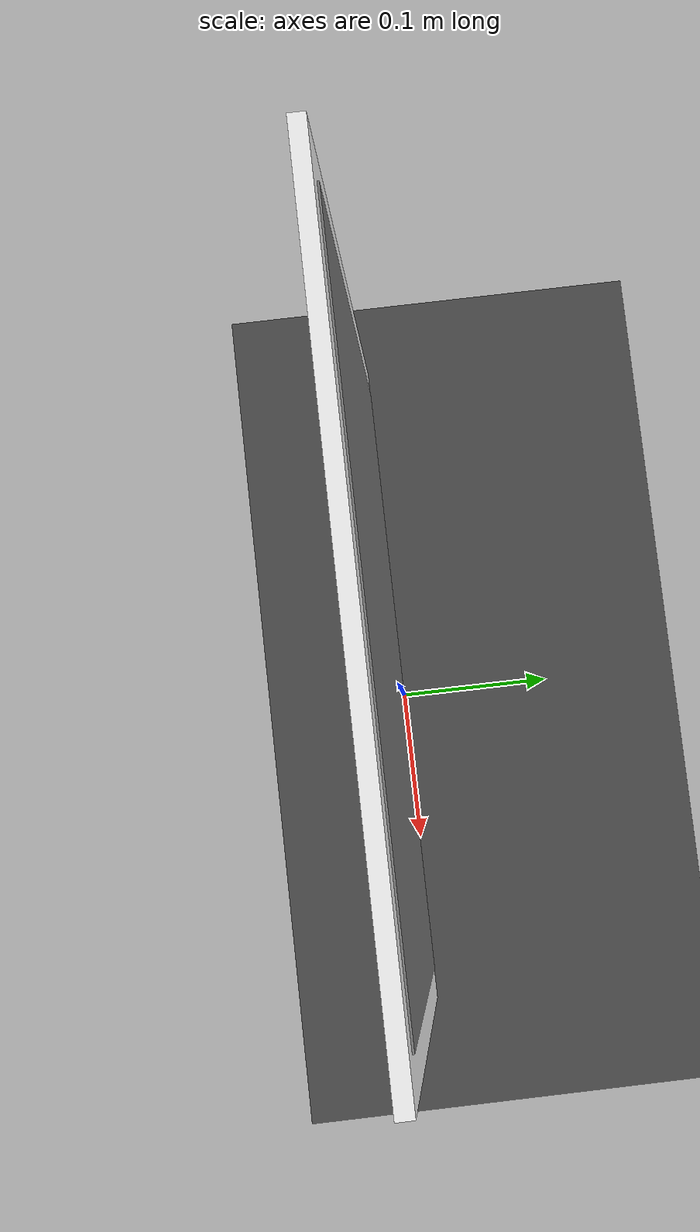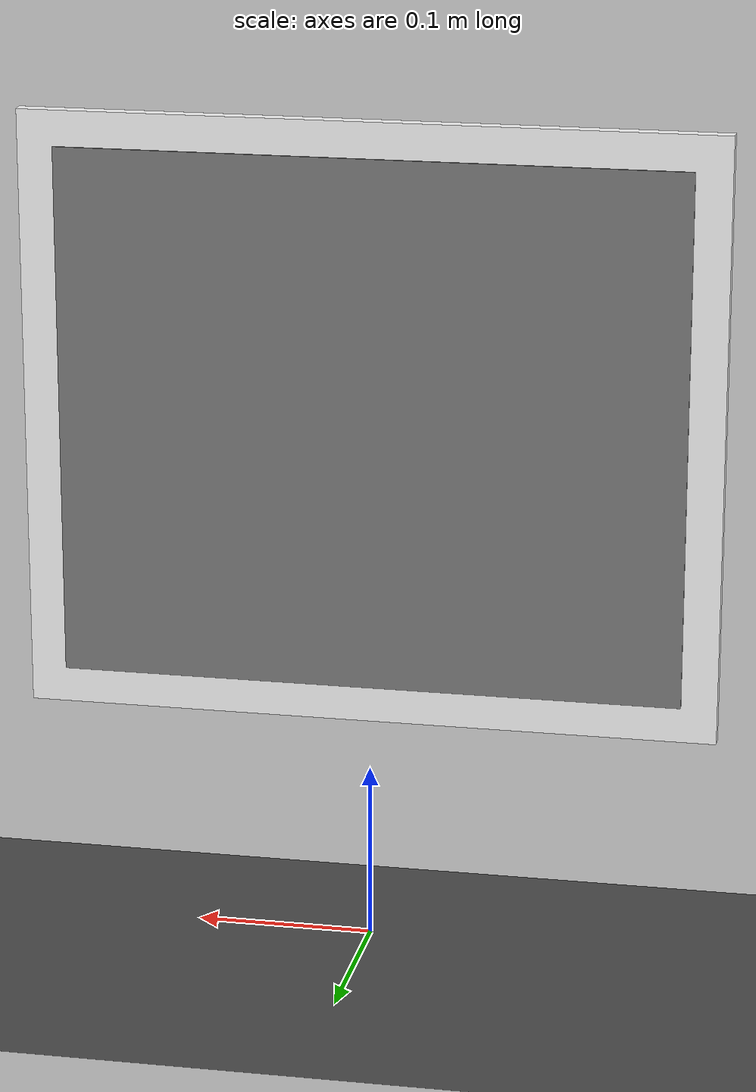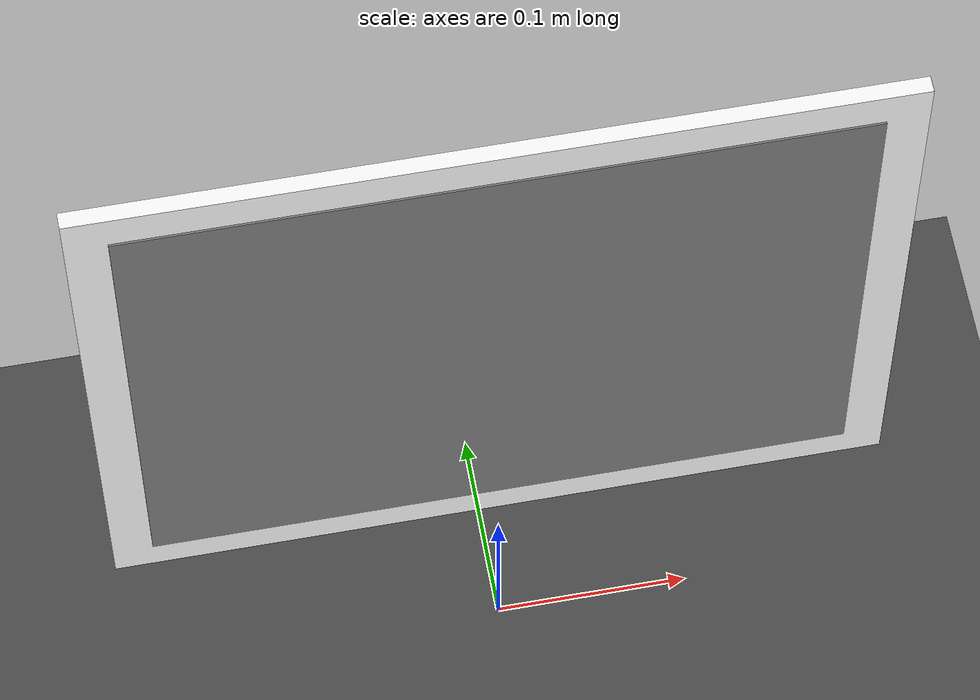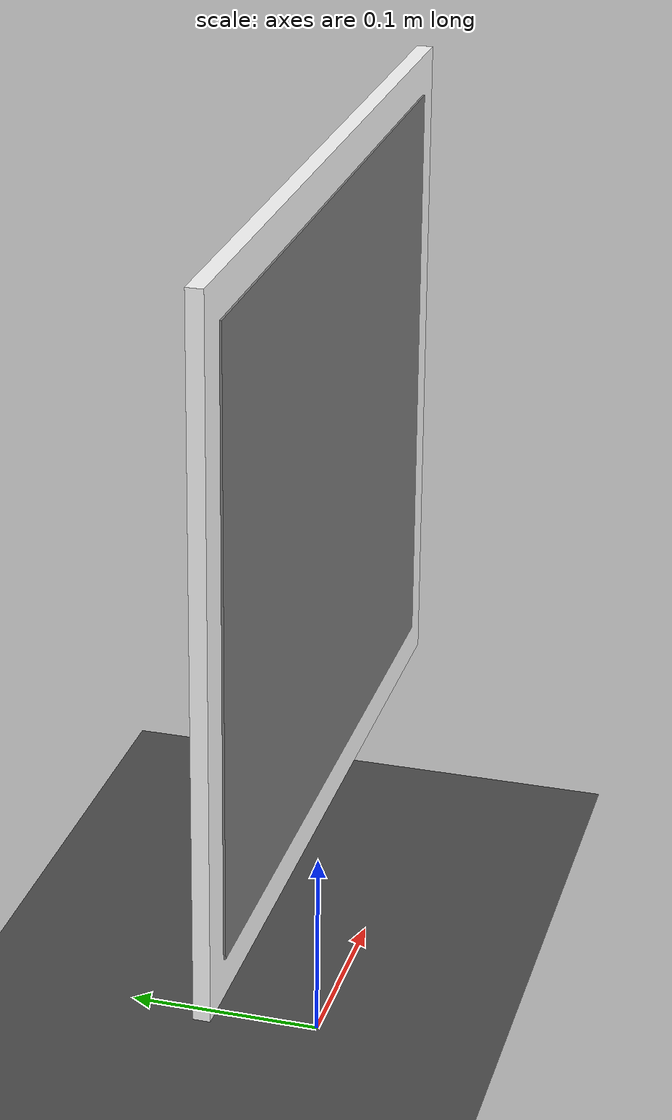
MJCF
<!-- 视觉标定 -->
<mujoco model="scene_checkerboard">
  <option timestep="0.005"/>

  <asset>
    <texture name="checker_tex" type="2d" builtin="checker" rgb1="0 0 0" rgb2="1 1 1" width="512" height="512" mark="none"/>
    <material name="checker_mat" texture="checker_tex" texrepeat="3.5 3" reflectance="0"/>
    <material name="white_mat" rgba="1 1 1 1" reflectance="0"/>
  </asset>

  <visual>
    <!-- 提高离屏渲染分辨率 -->
    <global offwidth="1920" offheight="1080"/>
    <quality shadowsize="4096"/>
  </visual>

  <worldbody>
    <!-- 环境光 (变暗一点) -->
    <light pos="0 0 2" dir="0 0 -1" diffuse="0.3 0.3 0.3"/>

    <!-- 补光灯：放在相机附近 (0 -0.8)，照向棋盘格 (0 0 0) 方向 -->
    <!-- 这里的 dir="0 1 -0.2" 表示朝向 Y轴正方向(棋盘格方向) 稍微向下 -->
    <light pos="0 -0.8 1.5" dir="0 1 -0.5" diffuse="0.8 0.8 0.8" specular="0.1 0.1 0.1"/>

    <!-- 地面 (可选，作为背景参考) -->
    <!-- size前两个是视觉纹理平铺尺寸，最后是碰撞厚度-->
    <geom name="floor" type="plane" size="2 2 0.1" rgba="0.3 0.3 0.3 1"/>

    <!-- 相机 -->
    <!--  前3个数字是物体局部X轴，后3个数字是物体局部y轴 -->
    <!--  物体的「正前方」（比如相机的拍摄方向、棋盘格的朝向）是物体的局部 Z 轴 -->
    <camera name="fixed_cam" pos="0 -0.8 0.3" xyaxes="1 0 0 0 0 1" fovy="45"/>

    <!-- 标定板 -->
    <body name="checkerboard" pos="0 0 0.3" euler="0 0 0">
        <geom type="box" size="0.195 0.17 0.004" material="white_mat" euler="-90 0 0"/>
        <geom type="box" size="0.175 0.15 0.005" material="checker_mat" euler="-90 0 0"/>
    </body>

  </worldbody>
</mujoco>
